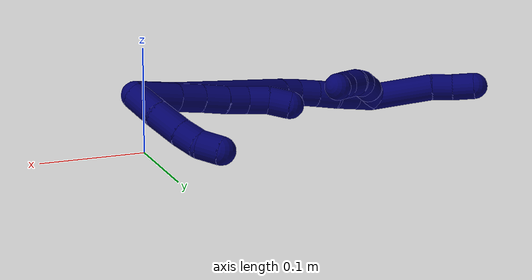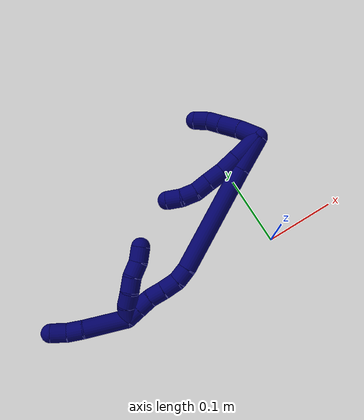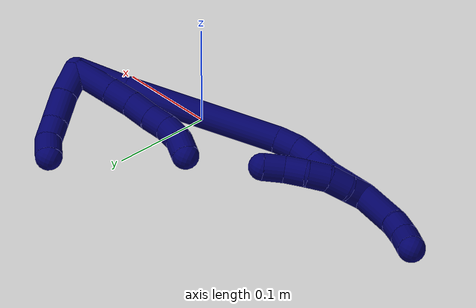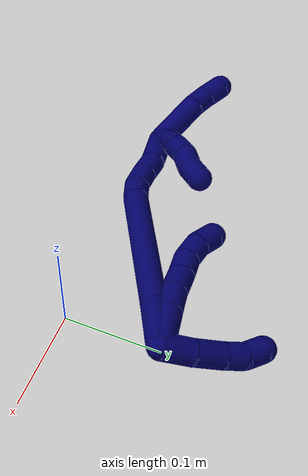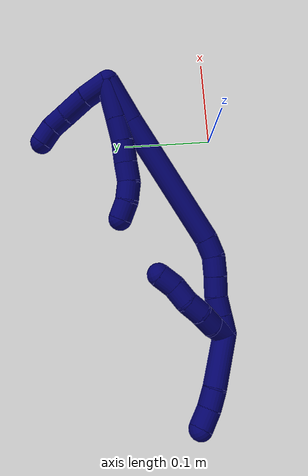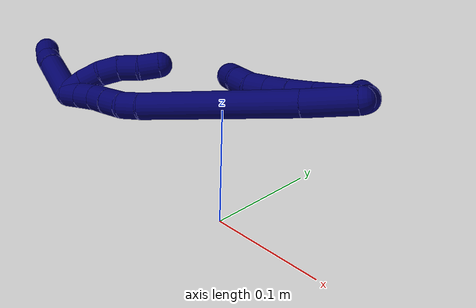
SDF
<sdf version="1.7">
 <world name="default">
  <model name="7">
   <static>0</static>
   <link name="7">
    <collision name="collision-cylinder-e_1_2_8">
     <pose>-0.005807 0.002998 -0.019347 -2.98787 -0.288339 2.1661</pose>
     <geometry><cylinder><radius>0.0125</radius><length>0.040842</length></cylinder></geometry>
     <surface>
      <friction><ode><mu>1.16</mu><mu2>1.16</mu2><slip1>0</slip1><slip2>0</slip2></ode></friction>
      <contact><ode><kp>1e+06</kp><kd>1</kd><max_vel>0</max_vel><min_depth>0.001</min_depth></ode></contact>
     </surface>
    </collision>
    <visual name="visual-cylinder-e_1_2_8">
     <pose>-0.005807 0.002998 -0.019347 -2.98787 -0.288339 2.1661</pose>
     <geometry><cylinder><radius>0.0125</radius><length>0.040842</length></cylinder></geometry>
     <material><ambient>0.003922 0 0.403922 1</ambient></material>
    </visual>
    <collision name="collision-cylinder-e_2_8_9">
     <pose>-0.015486 0.007752 -0.050305 -2.99147 -0.318533 2.26583</pose>
     <geometry><cylinder><radius>0.0125</radius><length>0.02473</length></cylinder></geometry>
     <surface>
      <friction><ode><mu>1.16</mu><mu2>1.16</mu2><slip1>0</slip1><slip2>0</slip2></ode></friction>
      <contact><ode><kp>1e+06</kp><kd>1</kd><max_vel>0</max_vel><min_depth>0.001</min_depth></ode></contact>
     </surface>
    </collision>
    <visual name="visual-cylinder-e_2_8_9">
     <pose>-0.015486 0.007752 -0.050305 -2.99147 -0.318533 2.26583</pose>
     <geometry><cylinder><radius>0.0125</radius><length>0.02473</length></cylinder></geometry>
     <material><ambient>0.003922 0 0.403922 1</ambient></material>
    </visual>
    <collision name="collision-cylinder-e_3_9_10">
     <pose>-0.023723 0.012175 -0.072445 -2.89352 -0.382029 1.99625</pose>
     <geometry><cylinder><radius>0.0125</radius><length>0.023411</length></cylinder></geometry>
     <surface>
      <friction><ode><mu>1.16</mu><mu2>1.16</mu2><slip1>0</slip1><slip2>0</slip2></ode></friction>
      <contact><ode><kp>1e+06</kp><kd>1</kd><max_vel>0</max_vel><min_depth>0.001</min_depth></ode></contact>
     </surface>
    </collision>
    <visual name="visual-cylinder-e_3_9_10">
     <pose>-0.023723 0.012175 -0.072445 -2.89352 -0.382029 1.99625</pose>
     <geometry><cylinder><radius>0.0125</radius><length>0.023411</length></cylinder></geometry>
     <material><ambient>0.003922 0 0.403922 1</ambient></material>
    </visual>
    <collision name="collision-cylinder-e_4_10_11">
     <pose>-0.032047 0.016548 -0.092361 -2.96181 -0.393484 2.2922</pose>
     <geometry><cylinder><radius>0.0125</radius><length>0.020661</length></cylinder></geometry>
     <surface>
      <friction><ode><mu>1.16</mu><mu2>1.16</mu2><slip1>0</slip1><slip2>0</slip2></ode></friction>
      <contact><ode><kp>1e+06</kp><kd>1</kd><max_vel>0</max_vel><min_depth>0.001</min_depth></ode></contact>
     </surface>
    </collision>
    <visual name="visual-cylinder-e_4_10_11">
     <pose>-0.032047 0.016548 -0.092361 -2.96181 -0.393484 2.2922</pose>
     <geometry><cylinder><radius>0.0125</radius><length>0.020661</length></cylinder></geometry>
     <material><ambient>0.003922 0 0.403922 1</ambient></material>
    </visual>
    <collision name="collision-cylinder-e_5_11_12">
     <pose>-0.041795 0.021561 -0.109403 -2.73382 -0.606778 1.9742</pose>
     <geometry><cylinder><radius>0.0125</radius><length>0.020299</length></cylinder></geometry>
     <surface>
      <friction><ode><mu>1.16</mu><mu2>1.16</mu2><slip1>0</slip1><slip2>0</slip2></ode></friction>
      <contact><ode><kp>1e+06</kp><kd>1</kd><max_vel>0</max_vel><min_depth>0.001</min_depth></ode></contact>
     </surface>
    </collision>
    <visual name="visual-cylinder-e_5_11_12">
     <pose>-0.041795 0.021561 -0.109403 -2.73382 -0.606778 1.9742</pose>
     <geometry><cylinder><radius>0.0125</radius><length>0.020299</length></cylinder></geometry>
     <material><ambient>0.003922 0 0.403922 1</ambient></material>
    </visual>
    <collision name="collision-cylinder-e_6_12_6">
     <pose>-0.053019 0.030668 -0.12317 -2.38245 -0.572897 1.27204</pose>
     <geometry><cylinder><radius>0.0125</radius><length>0.020057</length></cylinder></geometry>
     <surface>
      <friction><ode><mu>1.16</mu><mu2>1.16</mu2><slip1>0</slip1><slip2>0</slip2></ode></friction>
      <contact><ode><kp>1e+06</kp><kd>1</kd><max_vel>0</max_vel><min_depth>0.001</min_depth></ode></contact>
     </surface>
    </collision>
    <visual name="visual-cylinder-e_6_12_6">
     <pose>-0.053019 0.030668 -0.12317 -2.38245 -0.572897 1.27204</pose>
     <geometry><cylinder><radius>0.0125</radius><length>0.020057</length></cylinder></geometry>
     <material><ambient>0.003922 0 0.403922 1</ambient></material>
    </visual>
    <collision name="collision-cylinder-e_1_2_13">
     <pose>-0.005718 0.013759 -0.000423 -1.60154 -0.393714 0.40568</pose>
     <geometry><cylinder><radius>0.0125</radius><length>0.029813</length></cylinder></geometry>
     <surface>
      <friction><ode><mu>1.16</mu><mu2>1.16</mu2><slip1>0</slip1><slip2>0</slip2></ode></friction>
      <contact><ode><kp>1e+06</kp><kd>1</kd><max_vel>0</max_vel><min_depth>0.001</min_depth></ode></contact>
     </surface>
    </collision>
    <visual name="visual-cylinder-e_1_2_13">
     <pose>-0.005718 0.013759 -0.000423 -1.60154 -0.393714 0.40568</pose>
     <geometry><cylinder><radius>0.0125</radius><length>0.029813</length></cylinder></geometry>
     <material><ambient>0.003922 0 0.403922 1</ambient></material>
    </visual>
    <collision name="collision-cylinder-e_2_13_14">
     <pose>-0.017114 0.041177 -0.002977 -1.72552 -0.389708 0.453138</pose>
     <geometry><cylinder><radius>0.0125</radius><length>0.029888</length></cylinder></geometry>
     <surface>
      <friction><ode><mu>1.16</mu><mu2>1.16</mu2><slip1>0</slip1><slip2>0</slip2></ode></friction>
      <contact><ode><kp>1e+06</kp><kd>1</kd><max_vel>0</max_vel><min_depth>0.001</min_depth></ode></contact>
     </surface>
    </collision>
    <visual name="visual-cylinder-e_2_13_14">
     <pose>-0.017114 0.041177 -0.002977 -1.72552 -0.389708 0.453138</pose>
     <geometry><cylinder><radius>0.0125</radius><length>0.029888</length></cylinder></geometry>
     <material><ambient>0.003922 0 0.403922 1</ambient></material>
    </visual>
    <collision name="collision-cylinder-e_3_14_15">
     <pose>-0.02741 0.063687 -0.006583 -1.73599 -0.475269 0.557004</pose>
     <geometry><cylinder><radius>0.0125</radius><length>0.020185</length></cylinder></geometry>
     <surface>
      <friction><ode><mu>1.16</mu><mu2>1.16</mu2><slip1>0</slip1><slip2>0</slip2></ode></friction>
      <contact><ode><kp>1e+06</kp><kd>1</kd><max_vel>0</max_vel><min_depth>0.001</min_depth></ode></contact>
     </surface>
    </collision>
    <visual name="visual-cylinder-e_3_14_15">
     <pose>-0.02741 0.063687 -0.006583 -1.73599 -0.475269 0.557004</pose>
     <geometry><cylinder><radius>0.0125</radius><length>0.020185</length></cylinder></geometry>
     <material><ambient>0.003922 0 0.403922 1</ambient></material>
    </visual>
    <collision name="collision-cylinder-e_4_15_5">
     <pose>-0.037954 0.079619 -0.012045 -2.08354 -0.630163 1.01722</pose>
     <geometry><cylinder><radius>0.0125</radius><length>0.020115</length></cylinder></geometry>
     <surface>
      <friction><ode><mu>1.16</mu><mu2>1.16</mu2><slip1>0</slip1><slip2>0</slip2></ode></friction>
      <contact><ode><kp>1e+06</kp><kd>1</kd><max_vel>0</max_vel><min_depth>0.001</min_depth></ode></contact>
     </surface>
    </collision>
    <visual name="visual-cylinder-e_4_15_5">
     <pose>-0.037954 0.079619 -0.012045 -2.08354 -0.630163 1.01722</pose>
     <geometry><cylinder><radius>0.0125</radius><length>0.020115</length></cylinder></geometry>
     <material><ambient>0.003922 0 0.403922 1</ambient></material>
    </visual>
    <collision name="collision-cylinder-e_1_2_16">
     <pose>-0.001824 -0.001097 -0.024412 3.0967 -0.074522 -2.05752</pose>
     <geometry><cylinder><radius>0.0125</radius><length>0.049009</length></cylinder></geometry>
     <surface>
      <friction><ode><mu>1.16</mu><mu2>1.16</mu2><slip1>0</slip1><slip2>0</slip2></ode></friction>
      <contact><ode><kp>1e+06</kp><kd>1</kd><max_vel>0</max_vel><min_depth>0.001</min_depth></ode></contact>
     </surface>
    </collision>
    <visual name="visual-cylinder-e_1_2_16">
     <pose>-0.001824 -0.001097 -0.024412 3.0967 -0.074522 -2.05752</pose>
     <geometry><cylinder><radius>0.0125</radius><length>0.049009</length></cylinder></geometry>
     <material><ambient>0.003922 0 0.403922 1</ambient></material>
    </visual>
    <collision name="collision-cylinder-e_2_16_17">
     <pose>-0.010342 -0.008873 -0.122208 3.05081 -0.090577 -1.56854</pose>
     <geometry><cylinder><radius>0.0125</radius><length>0.147981</length></cylinder></geometry>
     <surface>
      <friction><ode><mu>1.16</mu><mu2>1.16</mu2><slip1>0</slip1><slip2>0</slip2></ode></friction>
      <contact><ode><kp>1e+06</kp><kd>1</kd><max_vel>0</max_vel><min_depth>0.001</min_depth></ode></contact>
     </surface>
    </collision>
    <visual name="visual-cylinder-e_2_16_17">
     <pose>-0.010342 -0.008873 -0.122208 3.05081 -0.090577 -1.56854</pose>
     <geometry><cylinder><radius>0.0125</radius><length>0.147981</length></cylinder></geometry>
     <material><ambient>0.003922 0 0.403922 1</ambient></material>
    </visual>
    <collision name="collision-cylinder-e_3_17_18">
     <pose>-0.019078 -0.015222 -0.205523 -3.10821 -0.20285 2.81648</pose>
     <geometry><cylinder><radius>0.0125</radius><length>0.020292</length></cylinder></geometry>
     <surface>
      <friction><ode><mu>1.16</mu><mu2>1.16</mu2><slip1>0</slip1><slip2>0</slip2></ode></friction>
      <contact><ode><kp>1e+06</kp><kd>1</kd><max_vel>0</max_vel><min_depth>0.001</min_depth></ode></contact>
     </surface>
    </collision>
    <visual name="visual-cylinder-e_3_17_18">
     <pose>-0.019078 -0.015222 -0.205523 -3.10821 -0.20285 2.81648</pose>
     <geometry><cylinder><radius>0.0125</radius><length>0.020292</length></cylinder></geometry>
     <material><ambient>0.003922 0 0.403922 1</ambient></material>
    </visual>
    <collision name="collision-cylinder-e_4_18_19">
     <pose>-0.025406 -0.012273 -0.224794 -2.86831 -0.415964 1.98666</pose>
     <geometry><cylinder><radius>0.0125</radius><length>0.021205</length></cylinder></geometry>
     <surface>
      <friction><ode><mu>1.16</mu><mu2>1.16</mu2><slip1>0</slip1><slip2>0</slip2></ode></friction>
      <contact><ode><kp>1e+06</kp><kd>1</kd><max_vel>0</max_vel><min_depth>0.001</min_depth></ode></contact>
     </surface>
    </collision>
    <visual name="visual-cylinder-e_4_18_19">
     <pose>-0.025406 -0.012273 -0.224794 -2.86831 -0.415964 1.98666</pose>
     <geometry><cylinder><radius>0.0125</radius><length>0.021205</length></cylinder></geometry>
     <material><ambient>0.003922 0 0.403922 1</ambient></material>
    </visual>
    <collision name="collision-cylinder-e_5_19_20">
     <pose>-0.034258 -0.006431 -0.243188 -2.79948 -0.443593 1.83423</pose>
     <geometry><cylinder><radius>0.0125</radius><length>0.021283</length></cylinder></geometry>
     <surface>
      <friction><ode><mu>1.16</mu><mu2>1.16</mu2><slip1>0</slip1><slip2>0</slip2></ode></friction>
      <contact><ode><kp>1e+06</kp><kd>1</kd><max_vel>0</max_vel><min_depth>0.001</min_depth></ode></contact>
     </surface>
    </collision>
    <visual name="visual-cylinder-e_5_19_20">
     <pose>-0.034258 -0.006431 -0.243188 -2.79948 -0.443593 1.83423</pose>
     <geometry><cylinder><radius>0.0125</radius><length>0.021283</length></cylinder></geometry>
     <material><ambient>0.003922 0 0.403922 1</ambient></material>
    </visual>
    <collision name="collision-cylinder-e_6_20_21">
     <pose>-0.041989 -0.001637 -0.26164 -2.97621 -0.32057 2.19417</pose>
     <geometry><cylinder><radius>0.0125</radius><length>0.020079</length></cylinder></geometry>
     <surface>
      <friction><ode><mu>1.16</mu><mu2>1.16</mu2><slip1>0</slip1><slip2>0</slip2></ode></friction>
      <contact><ode><kp>1e+06</kp><kd>1</kd><max_vel>0</max_vel><min_depth>0.001</min_depth></ode></contact>
     </surface>
    </collision>
    <visual name="visual-cylinder-e_6_20_21">
     <pose>-0.041989 -0.001637 -0.26164 -2.97621 -0.32057 2.19417</pose>
     <geometry><cylinder><radius>0.0125</radius><length>0.020079</length></cylinder></geometry>
     <material><ambient>0.003922 0 0.403922 1</ambient></material>
    </visual>
    <collision name="collision-cylinder-e_7_21_1">
     <pose>-0.048216 0.001531 -0.280502 -2.97412 -0.309037 2.1531</pose>
     <geometry><cylinder><radius>0.0125</radius><length>0.020151</length></cylinder></geometry>
     <surface>
      <friction><ode><mu>1.16</mu><mu2>1.16</mu2><slip1>0</slip1><slip2>0</slip2></ode></friction>
      <contact><ode><kp>1e+06</kp><kd>1</kd><max_vel>0</max_vel><min_depth>0.001</min_depth></ode></contact>
     </surface>
    </collision>
    <visual name="visual-cylinder-e_7_21_1">
     <pose>-0.048216 0.001531 -0.280502 -2.97412 -0.309037 2.1531</pose>
     <geometry><cylinder><radius>0.0125</radius><length>0.020151</length></cylinder></geometry>
     <material><ambient>0.003922 0 0.403922 1</ambient></material>
    </visual>
    <collision name="collision-cylinder-e_1_1_22">
     <pose>-0.056592 0.003451 -0.281499 -0.037823 -0.559972 0.010877</pose>
     <geometry><cylinder><radius>0.0125</radius><length>0.02</length></cylinder></geometry>
     <surface>
      <friction><ode><mu>1.16</mu><mu2>1.16</mu2><slip1>0</slip1><slip2>0</slip2></ode></friction>
      <contact><ode><kp>1e+06</kp><kd>1</kd><max_vel>0</max_vel><min_depth>0.001</min_depth></ode></contact>
     </surface>
    </collision>
    <visual name="visual-cylinder-e_1_1_22">
     <pose>-0.056592 0.003451 -0.281499 -0.037823 -0.559972 0.010877</pose>
     <geometry><cylinder><radius>0.0125</radius><length>0.02</length></cylinder></geometry>
     <material><ambient>0.003922 0 0.403922 1</ambient></material>
    </visual>
    <collision name="collision-cylinder-e_2_22_23">
     <pose>-0.064893 0.003673 -0.26349 0.010365 -0.3035 -0.001585</pose>
     <geometry><cylinder><radius>0.0125</radius><length>0.02</length></cylinder></geometry>
     <surface>
      <friction><ode><mu>1.16</mu><mu2>1.16</mu2><slip1>0</slip1><slip2>0</slip2></ode></friction>
      <contact><ode><kp>1e+06</kp><kd>1</kd><max_vel>0</max_vel><min_depth>0.001</min_depth></ode></contact>
     </surface>
    </collision>
    <visual name="visual-cylinder-e_2_22_23">
     <pose>-0.064893 0.003673 -0.26349 0.010365 -0.3035 -0.001585</pose>
     <geometry><cylinder><radius>0.0125</radius><length>0.02</length></cylinder></geometry>
     <material><ambient>0.003922 0 0.403922 1</ambient></material>
    </visual>
    <collision name="collision-cylinder-e_3_23_24">
     <pose>-0.07006 0.005779 -0.244441 -0.227946 -0.219611 0.025239</pose>
     <geometry><cylinder><radius>0.0125</radius><length>0.02</length></cylinder></geometry>
     <surface>
      <friction><ode><mu>1.16</mu><mu2>1.16</mu2><slip1>0</slip1><slip2>0</slip2></ode></friction>
      <contact><ode><kp>1e+06</kp><kd>1</kd><max_vel>0</max_vel><min_depth>0.001</min_depth></ode></contact>
     </surface>
    </collision>
    <visual name="visual-cylinder-e_3_23_24">
     <pose>-0.07006 0.005779 -0.244441 -0.227946 -0.219611 0.025239</pose>
     <geometry><cylinder><radius>0.0125</radius><length>0.02</length></cylinder></geometry>
     <material><ambient>0.003922 0 0.403922 1</ambient></material>
    </visual>
    <collision name="collision-cylinder-e_4_24_25">
     <pose>-0.071573 0.010159 -0.225195 -0.219656 0.066559 -0.007342</pose>
     <geometry><cylinder><radius>0.0125</radius><length>0.02</length></cylinder></geometry>
     <surface>
      <friction><ode><mu>1.16</mu><mu2>1.16</mu2><slip1>0</slip1><slip2>0</slip2></ode></friction>
      <contact><ode><kp>1e+06</kp><kd>1</kd><max_vel>0</max_vel><min_depth>0.001</min_depth></ode></contact>
     </surface>
    </collision>
    <visual name="visual-cylinder-e_4_24_25">
     <pose>-0.071573 0.010159 -0.225195 -0.219656 0.066559 -0.007342</pose>
     <geometry><cylinder><radius>0.0125</radius><length>0.02</length></cylinder></geometry>
     <material><ambient>0.003922 0 0.403922 1</ambient></material>
    </visual>
    <collision name="collision-cylinder-e_5_25_4">
     <pose>-0.072445 0.015631 -0.206142 -0.340279 -0.154331 0.026565</pose>
     <geometry><cylinder><radius>0.0125</radius><length>0.02</length></cylinder></geometry>
     <surface>
      <friction><ode><mu>1.16</mu><mu2>1.16</mu2><slip1>0</slip1><slip2>0</slip2></ode></friction>
      <contact><ode><kp>1e+06</kp><kd>1</kd><max_vel>0</max_vel><min_depth>0.001</min_depth></ode></contact>
     </surface>
    </collision>
    <visual name="visual-cylinder-e_5_25_4">
     <pose>-0.072445 0.015631 -0.206142 -0.340279 -0.154331 0.026565</pose>
     <geometry><cylinder><radius>0.0125</radius><length>0.02</length></cylinder></geometry>
     <material><ambient>0.003922 0 0.403922 1</ambient></material>
    </visual>
    <collision name="collision-cylinder-e_1_1_26">
     <pose>-0.073254 0.010778 -0.307468 -2.72968 -0.855244 2.28194</pose>
     <geometry><cylinder><radius>0.0125</radius><length>0.058226</length></cylinder></geometry>
     <surface>
      <friction><ode><mu>1.16</mu><mu2>1.16</mu2><slip1>0</slip1><slip2>0</slip2></ode></friction>
      <contact><ode><kp>1e+06</kp><kd>1</kd><max_vel>0</max_vel><min_depth>0.001</min_depth></ode></contact>
     </surface>
    </collision>
    <visual name="visual-cylinder-e_1_1_26">
     <pose>-0.073254 0.010778 -0.307468 -2.72968 -0.855244 2.28194</pose>
     <geometry><cylinder><radius>0.0125</radius><length>0.058226</length></cylinder></geometry>
     <material><ambient>0.003922 0 0.403922 1</ambient></material>
    </visual>
    <collision name="collision-cylinder-e_2_26_27">
     <pose>-0.102162 0.022648 -0.331241 -2.54894 -0.742287 1.81114</pose>
     <geometry><cylinder><radius>0.0125</radius><length>0.020521</length></cylinder></geometry>
     <surface>
      <friction><ode><mu>1.16</mu><mu2>1.16</mu2><slip1>0</slip1><slip2>0</slip2></ode></friction>
      <contact><ode><kp>1e+06</kp><kd>1</kd><max_vel>0</max_vel><min_depth>0.001</min_depth></ode></contact>
     </surface>
    </collision>
    <visual name="visual-cylinder-e_2_26_27">
     <pose>-0.102162 0.022648 -0.331241 -2.54894 -0.742287 1.81114</pose>
     <geometry><cylinder><radius>0.0125</radius><length>0.020521</length></cylinder></geometry>
     <material><ambient>0.003922 0 0.403922 1</ambient></material>
    </visual>
    <collision name="collision-cylinder-e_3_27_3">
     <pose>-0.117395 0.03135 -0.342413 -2.40103 -0.896029 1.78276</pose>
     <geometry><cylinder><radius>0.0125</radius><length>0.021253</length></cylinder></geometry>
     <surface>
      <friction><ode><mu>1.16</mu><mu2>1.16</mu2><slip1>0</slip1><slip2>0</slip2></ode></friction>
      <contact><ode><kp>1e+06</kp><kd>1</kd><max_vel>0</max_vel><min_depth>0.001</min_depth></ode></contact>
     </surface>
    </collision>
    <visual name="visual-cylinder-e_3_27_3">
     <pose>-0.117395 0.03135 -0.342413 -2.40103 -0.896029 1.78276</pose>
     <geometry><cylinder><radius>0.0125</radius><length>0.021253</length></cylinder></geometry>
     <material><ambient>0.003922 0 0.403922 1</ambient></material>
    </visual>
    <collision name="collision-sphere-3">
     <pose>-0.125693 0.035829 -0.347313 0 -0 0</pose>
     <geometry><sphere><radius>0.0125</radius></sphere></geometry>
     <surface>
      <friction><ode><mu>1.16</mu><mu2>1.16</mu2><slip1>0</slip1><slip2>0</slip2></ode></friction>
      <contact><ode><kp>1e+06</kp><kd>1</kd><max_vel>0</max_vel><min_depth>0.001</min_depth></ode></contact>
     </surface>
    </collision>
    <visual name="visual-sphere-3">
     <pose>-0.125693 0.035829 -0.347313 0 -0 0</pose>
     <geometry><sphere><radius>0.0125</radius></sphere></geometry>
     <material><ambient>0.003922 0 0.403922 1</ambient></material>
    </visual>
    <collision name="collision-sphere-27">
     <pose>-0.109098 0.026871 -0.337513 0 -0 0</pose>
     <geometry><sphere><radius>0.0125</radius></sphere></geometry>
     <surface>
      <friction><ode><mu>1.16</mu><mu2>1.16</mu2><slip1>0</slip1><slip2>0</slip2></ode></friction>
      <contact><ode><kp>1e+06</kp><kd>1</kd><max_vel>0</max_vel><min_depth>0.001</min_depth></ode></contact>
     </surface>
    </collision>
    <visual name="visual-sphere-27">
     <pose>-0.109098 0.026871 -0.337513 0 -0 0</pose>
     <geometry><sphere><radius>0.0125</radius></sphere></geometry>
     <material><ambient>0.003922 0 0.403922 1</ambient></material>
    </visual>
    <collision name="collision-sphere-26">
     <pose>-0.095226 0.018424 -0.32497 0 -0 0</pose>
     <geometry><sphere><radius>0.0125</radius></sphere></geometry>
     <surface>
      <friction><ode><mu>1.16</mu><mu2>1.16</mu2><slip1>0</slip1><slip2>0</slip2></ode></friction>
      <contact><ode><kp>1e+06</kp><kd>1</kd><max_vel>0</max_vel><min_depth>0.001</min_depth></ode></contact>
     </surface>
    </collision>
    <visual name="visual-sphere-26">
     <pose>-0.095226 0.018424 -0.32497 0 -0 0</pose>
     <geometry><sphere><radius>0.0125</radius></sphere></geometry>
     <material><ambient>0.003922 0 0.403922 1</ambient></material>
    </visual>
    <collision name="collision-sphere-4">
     <pose>-0.073983 0.018929 -0.196828 0 -0 0</pose>
     <geometry><sphere><radius>0.0125</radius></sphere></geometry>
     <surface>
      <friction><ode><mu>1.16</mu><mu2>1.16</mu2><slip1>0</slip1><slip2>0</slip2></ode></friction>
      <contact><ode><kp>1e+06</kp><kd>1</kd><max_vel>0</max_vel><min_depth>0.001</min_depth></ode></contact>
     </surface>
    </collision>
    <visual name="visual-sphere-4">
     <pose>-0.073983 0.018929 -0.196828 0 -0 0</pose>
     <geometry><sphere><radius>0.0125</radius></sphere></geometry>
     <material><ambient>0.003922 0 0.403922 1</ambient></material>
    </visual>
    <collision name="collision-sphere-25">
     <pose>-0.070908 0.012333 -0.215457 0 -0 0</pose>
     <geometry><sphere><radius>0.0125</radius></sphere></geometry>
     <surface>
      <friction><ode><mu>1.16</mu><mu2>1.16</mu2><slip1>0</slip1><slip2>0</slip2></ode></friction>
      <contact><ode><kp>1e+06</kp><kd>1</kd><max_vel>0</max_vel><min_depth>0.001</min_depth></ode></contact>
     </surface>
    </collision>
    <visual name="visual-sphere-25">
     <pose>-0.070908 0.012333 -0.215457 0 -0 0</pose>
     <geometry><sphere><radius>0.0125</radius></sphere></geometry>
     <material><ambient>0.003922 0 0.403922 1</ambient></material>
    </visual>
    <collision name="collision-sphere-24">
     <pose>-0.072238 0.007985 -0.234933 0 -0 0</pose>
     <geometry><sphere><radius>0.0125</radius></sphere></geometry>
     <surface>
      <friction><ode><mu>1.16</mu><mu2>1.16</mu2><slip1>0</slip1><slip2>0</slip2></ode></friction>
      <contact><ode><kp>1e+06</kp><kd>1</kd><max_vel>0</max_vel><min_depth>0.001</min_depth></ode></contact>
     </surface>
    </collision>
    <visual name="visual-sphere-24">
     <pose>-0.072238 0.007985 -0.234933 0 -0 0</pose>
     <geometry><sphere><radius>0.0125</radius></sphere></geometry>
     <material><ambient>0.003922 0 0.403922 1</ambient></material>
    </visual>
    <collision name="collision-sphere-23">
     <pose>-0.067881 0.003574 -0.253948 0 -0 0</pose>
     <geometry><sphere><radius>0.0125</radius></sphere></geometry>
     <surface>
      <friction><ode><mu>1.16</mu><mu2>1.16</mu2><slip1>0</slip1><slip2>0</slip2></ode></friction>
      <contact><ode><kp>1e+06</kp><kd>1</kd><max_vel>0</max_vel><min_depth>0.001</min_depth></ode></contact>
     </surface>
    </collision>
    <visual name="visual-sphere-23">
     <pose>-0.067881 0.003574 -0.253948 0 -0 0</pose>
     <geometry><sphere><radius>0.0125</radius></sphere></geometry>
     <material><ambient>0.003922 0 0.403922 1</ambient></material>
    </visual>
    <collision name="collision-sphere-22">
     <pose>-0.061904 0.003772 -0.273033 0 -0 0</pose>
     <geometry><sphere><radius>0.0125</radius></sphere></geometry>
     <surface>
      <friction><ode><mu>1.16</mu><mu2>1.16</mu2><slip1>0</slip1><slip2>0</slip2></ode></friction>
      <contact><ode><kp>1e+06</kp><kd>1</kd><max_vel>0</max_vel><min_depth>0.001</min_depth></ode></contact>
     </surface>
    </collision>
    <visual name="visual-sphere-22">
     <pose>-0.061904 0.003772 -0.273033 0 -0 0</pose>
     <geometry><sphere><radius>0.0125</radius></sphere></geometry>
     <material><ambient>0.003922 0 0.403922 1</ambient></material>
    </visual>
    <collision name="collision-sphere-1">
     <pose>-0.051281 0.003131 -0.289966 0 -0 0</pose>
     <geometry><sphere><radius>0.0125</radius></sphere></geometry>
     <surface>
      <friction><ode><mu>1.16</mu><mu2>1.16</mu2><slip1>0</slip1><slip2>0</slip2></ode></friction>
      <contact><ode><kp>1e+06</kp><kd>1</kd><max_vel>0</max_vel><min_depth>0.001</min_depth></ode></contact>
     </surface>
    </collision>
    <visual name="visual-sphere-1">
     <pose>-0.051281 0.003131 -0.289966 0 -0 0</pose>
     <geometry><sphere><radius>0.0125</radius></sphere></geometry>
     <material><ambient>0.003922 0 0.403922 1</ambient></material>
    </visual>
    <collision name="collision-sphere-21">
     <pose>-0.045152 -6.9e-05 -0.271038 0 -0 0</pose>
     <geometry><sphere><radius>0.0125</radius></sphere></geometry>
     <surface>
      <friction><ode><mu>1.16</mu><mu2>1.16</mu2><slip1>0</slip1><slip2>0</slip2></ode></friction>
      <contact><ode><kp>1e+06</kp><kd>1</kd><max_vel>0</max_vel><min_depth>0.001</min_depth></ode></contact>
     </surface>
    </collision>
    <visual name="visual-sphere-21">
     <pose>-0.045152 -6.9e-05 -0.271038 0 -0 0</pose>
     <geometry><sphere><radius>0.0125</radius></sphere></geometry>
     <material><ambient>0.003922 0 0.403922 1</ambient></material>
    </visual>
    <collision name="collision-sphere-12">
     <pose>-0.047583 0.024867 -0.117057 0 -0 0</pose>
     <geometry><sphere><radius>0.0125</radius></sphere></geometry>
     <surface>
      <friction><ode><mu>1.16</mu><mu2>1.16</mu2><slip1>0</slip1><slip2>0</slip2></ode></friction>
      <contact><ode><kp>1e+06</kp><kd>1</kd><max_vel>0</max_vel><min_depth>0.001</min_depth></ode></contact>
     </surface>
    </collision>
    <visual name="visual-sphere-12">
     <pose>-0.047583 0.024867 -0.117057 0 -0 0</pose>
     <geometry><sphere><radius>0.0125</radius></sphere></geometry>
     <material><ambient>0.003922 0 0.403922 1</ambient></material>
    </visual>
    <collision name="collision-sphere-11">
     <pose>-0.036008 0.018254 -0.101749 0 -0 0</pose>
     <geometry><sphere><radius>0.0125</radius></sphere></geometry>
     <surface>
      <friction><ode><mu>1.16</mu><mu2>1.16</mu2><slip1>0</slip1><slip2>0</slip2></ode></friction>
      <contact><ode><kp>1e+06</kp><kd>1</kd><max_vel>0</max_vel><min_depth>0.001</min_depth></ode></contact>
     </surface>
    </collision>
    <visual name="visual-sphere-11">
     <pose>-0.036008 0.018254 -0.101749 0 -0 0</pose>
     <geometry><sphere><radius>0.0125</radius></sphere></geometry>
     <material><ambient>0.003922 0 0.403922 1</ambient></material>
    </visual>
    <collision name="collision-sphere-10">
     <pose>-0.028086 0.014842 -0.082974 0 -0 0</pose>
     <geometry><sphere><radius>0.0125</radius></sphere></geometry>
     <surface>
      <friction><ode><mu>1.16</mu><mu2>1.16</mu2><slip1>0</slip1><slip2>0</slip2></ode></friction>
      <contact><ode><kp>1e+06</kp><kd>1</kd><max_vel>0</max_vel><min_depth>0.001</min_depth></ode></contact>
     </surface>
    </collision>
    <visual name="visual-sphere-10">
     <pose>-0.028086 0.014842 -0.082974 0 -0 0</pose>
     <geometry><sphere><radius>0.0125</radius></sphere></geometry>
     <material><ambient>0.003922 0 0.403922 1</ambient></material>
    </visual>
    <collision name="collision-sphere-9">
     <pose>-0.019359 0.009508 -0.061916 0 -0 0</pose>
     <geometry><sphere><radius>0.0125</radius></sphere></geometry>
     <surface>
      <friction><ode><mu>1.16</mu><mu2>1.16</mu2><slip1>0</slip1><slip2>0</slip2></ode></friction>
      <contact><ode><kp>1e+06</kp><kd>1</kd><max_vel>0</max_vel><min_depth>0.001</min_depth></ode></contact>
     </surface>
    </collision>
    <visual name="visual-sphere-9">
     <pose>-0.019359 0.009508 -0.061916 0 -0 0</pose>
     <geometry><sphere><radius>0.0125</radius></sphere></geometry>
     <material><ambient>0.003922 0 0.403922 1</ambient></material>
    </visual>
    <collision name="collision-sphere-2">
     <geometry><sphere><radius>0.0125</radius></sphere></geometry>
     <surface>
      <friction><ode><mu>1.16</mu><mu2>1.16</mu2><slip1>0</slip1><slip2>0</slip2></ode></friction>
      <contact><ode><kp>1e+06</kp><kd>1</kd><max_vel>0</max_vel><min_depth>0.001</min_depth></ode></contact>
     </surface>
    </collision>
    <visual name="visual-sphere-2">
     <geometry><sphere><radius>0.0125</radius></sphere></geometry>
     <material><ambient>0.003922 0 0.403922 1</ambient></material>
    </visual>
    <collision name="collision-sphere-19">
     <pose>-0.029691 -0.009655 -0.234133 0 -0 0</pose>
     <geometry><sphere><radius>0.0125</radius></sphere></geometry>
     <surface>
      <friction><ode><mu>1.16</mu><mu2>1.16</mu2><slip1>0</slip1><slip2>0</slip2></ode></friction>
      <contact><ode><kp>1e+06</kp><kd>1</kd><max_vel>0</max_vel><min_depth>0.001</min_depth></ode></contact>
     </surface>
    </collision>
    <visual name="visual-sphere-19">
     <pose>-0.029691 -0.009655 -0.234133 0 -0 0</pose>
     <geometry><sphere><radius>0.0125</radius></sphere></geometry>
     <material><ambient>0.003922 0 0.403922 1</ambient></material>
    </visual>
    <collision name="collision-sphere-8">
     <pose>-0.011614 0.005996 -0.038694 0 -0 0</pose>
     <geometry><sphere><radius>0.0125</radius></sphere></geometry>
     <surface>
      <friction><ode><mu>1.16</mu><mu2>1.16</mu2><slip1>0</slip1><slip2>0</slip2></ode></friction>
      <contact><ode><kp>1e+06</kp><kd>1</kd><max_vel>0</max_vel><min_depth>0.001</min_depth></ode></contact>
     </surface>
    </collision>
    <visual name="visual-sphere-8">
     <pose>-0.011614 0.005996 -0.038694 0 -0 0</pose>
     <geometry><sphere><radius>0.0125</radius></sphere></geometry>
     <material><ambient>0.003922 0 0.403922 1</ambient></material>
    </visual>
    <collision name="collision-sphere-6">
     <pose>-0.058455 0.036468 -0.129284 0 -0 0</pose>
     <geometry><sphere><radius>0.0125</radius></sphere></geometry>
     <surface>
      <friction><ode><mu>1.16</mu><mu2>1.16</mu2><slip1>0</slip1><slip2>0</slip2></ode></friction>
      <contact><ode><kp>1e+06</kp><kd>1</kd><max_vel>0</max_vel><min_depth>0.001</min_depth></ode></contact>
     </surface>
    </collision>
    <visual name="visual-sphere-6">
     <pose>-0.058455 0.036468 -0.129284 0 -0 0</pose>
     <geometry><sphere><radius>0.0125</radius></sphere></geometry>
     <material><ambient>0.003922 0 0.403922 1</ambient></material>
    </visual>
    <collision name="collision-sphere-13">
     <pose>-0.011437 0.027519 -0.000846 0 -0 0</pose>
     <geometry><sphere><radius>0.0125</radius></sphere></geometry>
     <surface>
      <friction><ode><mu>1.16</mu><mu2>1.16</mu2><slip1>0</slip1><slip2>0</slip2></ode></friction>
      <contact><ode><kp>1e+06</kp><kd>1</kd><max_vel>0</max_vel><min_depth>0.001</min_depth></ode></contact>
     </surface>
    </collision>
    <visual name="visual-sphere-13">
     <pose>-0.011437 0.027519 -0.000846 0 -0 0</pose>
     <geometry><sphere><radius>0.0125</radius></sphere></geometry>
     <material><ambient>0.003922 0 0.403922 1</ambient></material>
    </visual>
    <collision name="collision-sphere-14">
     <pose>-0.022792 0.054835 -0.005107 0 -0 0</pose>
     <geometry><sphere><radius>0.0125</radius></sphere></geometry>
     <surface>
      <friction><ode><mu>1.16</mu><mu2>1.16</mu2><slip1>0</slip1><slip2>0</slip2></ode></friction>
      <contact><ode><kp>1e+06</kp><kd>1</kd><max_vel>0</max_vel><min_depth>0.001</min_depth></ode></contact>
     </surface>
    </collision>
    <visual name="visual-sphere-14">
     <pose>-0.022792 0.054835 -0.005107 0 -0 0</pose>
     <geometry><sphere><radius>0.0125</radius></sphere></geometry>
     <material><ambient>0.003922 0 0.403922 1</ambient></material>
    </visual>
    <collision name="collision-sphere-15">
     <pose>-0.032028 0.072539 -0.008059 0 -0 0</pose>
     <geometry><sphere><radius>0.0125</radius></sphere></geometry>
     <surface>
      <friction><ode><mu>1.16</mu><mu2>1.16</mu2><slip1>0</slip1><slip2>0</slip2></ode></friction>
      <contact><ode><kp>1e+06</kp><kd>1</kd><max_vel>0</max_vel><min_depth>0.001</min_depth></ode></contact>
     </surface>
    </collision>
    <visual name="visual-sphere-15">
     <pose>-0.032028 0.072539 -0.008059 0 -0 0</pose>
     <geometry><sphere><radius>0.0125</radius></sphere></geometry>
     <material><ambient>0.003922 0 0.403922 1</ambient></material>
    </visual>
    <collision name="collision-sphere-5">
     <pose>-0.043881 0.0867 -0.016031 0 -0 0</pose>
     <geometry><sphere><radius>0.0125</radius></sphere></geometry>
     <surface>
      <friction><ode><mu>1.16</mu><mu2>1.16</mu2><slip1>0</slip1><slip2>0</slip2></ode></friction>
      <contact><ode><kp>1e+06</kp><kd>1</kd><max_vel>0</max_vel><min_depth>0.001</min_depth></ode></contact>
     </surface>
    </collision>
    <visual name="visual-sphere-5">
     <pose>-0.043881 0.0867 -0.016031 0 -0 0</pose>
     <geometry><sphere><radius>0.0125</radius></sphere></geometry>
     <material><ambient>0.003922 0 0.403922 1</ambient></material>
    </visual>
    <collision name="collision-sphere-16">
     <pose>-0.003649 -0.002193 -0.048824 0 -0 0</pose>
     <geometry><sphere><radius>0.0125</radius></sphere></geometry>
     <surface>
      <friction><ode><mu>1.16</mu><mu2>1.16</mu2><slip1>0</slip1><slip2>0</slip2></ode></friction>
      <contact><ode><kp>1e+06</kp><kd>1</kd><max_vel>0</max_vel><min_depth>0.001</min_depth></ode></contact>
     </surface>
    </collision>
    <visual name="visual-sphere-16">
     <pose>-0.003649 -0.002193 -0.048824 0 -0 0</pose>
     <geometry><sphere><radius>0.0125</radius></sphere></geometry>
     <material><ambient>0.003922 0 0.403922 1</ambient></material>
    </visual>
    <collision name="collision-sphere-17">
     <pose>-0.017034 -0.015554 -0.195591 0 -0 0</pose>
     <geometry><sphere><radius>0.0125</radius></sphere></geometry>
     <surface>
      <friction><ode><mu>1.16</mu><mu2>1.16</mu2><slip1>0</slip1><slip2>0</slip2></ode></friction>
      <contact><ode><kp>1e+06</kp><kd>1</kd><max_vel>0</max_vel><min_depth>0.001</min_depth></ode></contact>
     </surface>
    </collision>
    <visual name="visual-sphere-17">
     <pose>-0.017034 -0.015554 -0.195591 0 -0 0</pose>
     <geometry><sphere><radius>0.0125</radius></sphere></geometry>
     <material><ambient>0.003922 0 0.403922 1</ambient></material>
    </visual>
    <collision name="collision-sphere-18">
     <pose>-0.021122 -0.01489 -0.215456 0 -0 0</pose>
     <geometry><sphere><radius>0.0125</radius></sphere></geometry>
     <surface>
      <friction><ode><mu>1.16</mu><mu2>1.16</mu2><slip1>0</slip1><slip2>0</slip2></ode></friction>
      <contact><ode><kp>1e+06</kp><kd>1</kd><max_vel>0</max_vel><min_depth>0.001</min_depth></ode></contact>
     </surface>
    </collision>
    <visual name="visual-sphere-18">
     <pose>-0.021122 -0.01489 -0.215456 0 -0 0</pose>
     <geometry><sphere><radius>0.0125</radius></sphere></geometry>
     <material><ambient>0.003922 0 0.403922 1</ambient></material>
    </visual>
    <collision name="collision-sphere-20">
     <pose>-0.038825 -0.003206 -0.252242 0 -0 0</pose>
     <geometry><sphere><radius>0.0125</radius></sphere></geometry>
     <surface>
      <friction><ode><mu>1.16</mu><mu2>1.16</mu2><slip1>0</slip1><slip2>0</slip2></ode></friction>
      <contact><ode><kp>1e+06</kp><kd>1</kd><max_vel>0</max_vel><min_depth>0.001</min_depth></ode></contact>
     </surface>
    </collision>
    <visual name="visual-sphere-20">
     <pose>-0.038825 -0.003206 -0.252242 0 -0 0</pose>
     <geometry><sphere><radius>0.0125</radius></sphere></geometry>
     <material><ambient>0.003922 0 0.403922 1</ambient></material>
    </visual>
    <inertial>
     <pose>-0.035207 0.009306 -0.148665 0 -0 0</pose>
     <mass>0.75</mass>
     <inertia>
      <ixx>-0.000281</ixx>
      <ixy>0</ixy>
      <ixz>0</ixz>
      <iyy>-0.000192</iyy>
      <iyz>0</iyz>
      <izz>3e-05</izz>
     </inertia>
    </inertial>
   </link>
   <pose>0.042964 0.115423 0.08693 -1.16728 0.737794 -0.776637</pose>
  </model>
 </world>
</sdf>
